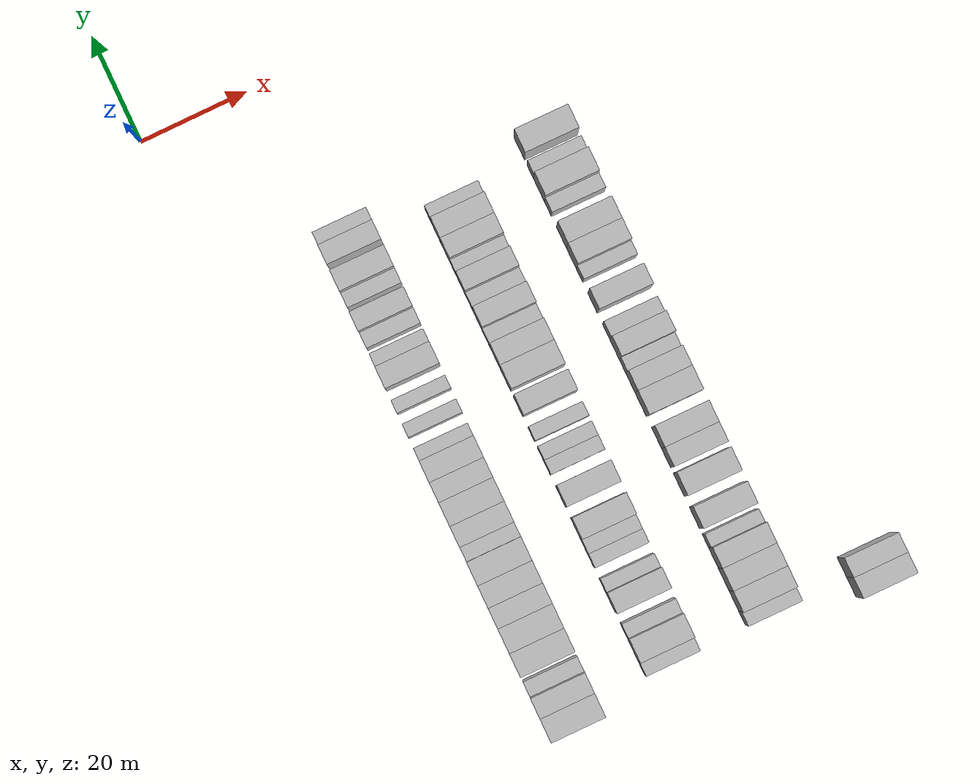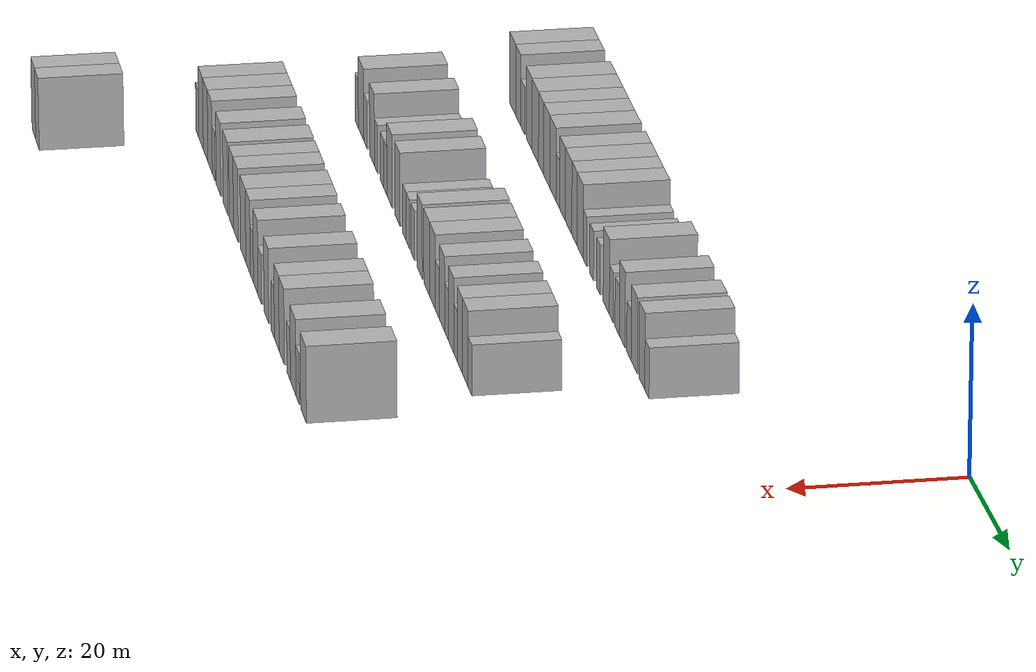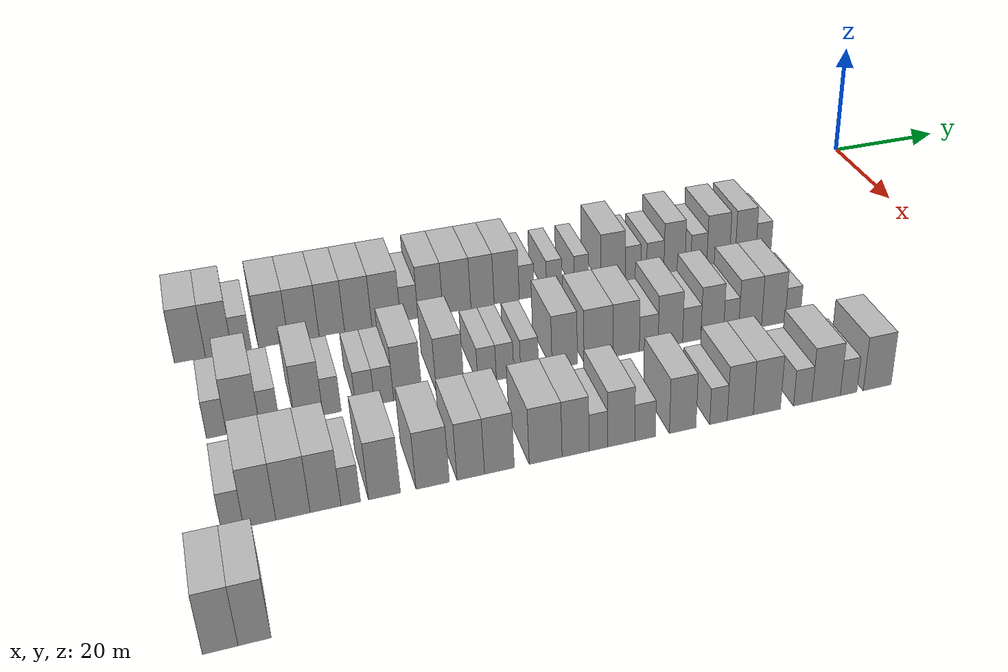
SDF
<sdf version="1.6">
 <world name="default">
  <model name="building_56">
   <static>1</static>
   <pose>25.0000 -119.3465 0 0.000000 0.000000 0.000000</pose>
   <link name="link">
    <pose>0 0 4.50 0 0 0</pose>
    <collision name="collision"><geometry><box><size>10.0000 4.3542 9.0000</size></box></geometry></collision>
    <visual name="visual">
     <cast_shadows>0</cast_shadows>
     <geometry><box><size>10.0000 4.3542 9.0000</size></box></geometry>
     <material>
      <script>
       <uri>model://HANNAS_wall/materials/scripts</uri>
       <uri>model://HANNAS_wall/materials/textures</uri>
       <name>vrc/HANNAS_wall</name>
      </script>
     </material>
    </visual>
   </link>
  </model>
  <model name="building_57">
   <static>1</static>
   <pose>25.0000 -115.2882 0 0.000000 0.000000 0.000000</pose>
   <link name="link">
    <pose>0 0 4.50 0 0 0</pose>
    <collision name="collision"><geometry><box><size>10.0000 3.7624 9.0000</size></box></geometry></collision>
    <visual name="visual">
     <cast_shadows>0</cast_shadows>
     <geometry><box><size>10.0000 3.7624 9.0000</size></box></geometry>
     <material>
      <script>
       <uri>model://HANNAS_wall/materials/scripts</uri>
       <uri>model://HANNAS_wall/materials/textures</uri>
       <name>vrc/HANNAS_wall</name>
      </script>
     </material>
    </visual>
   </link>
  </model>
  <model name="building_58">
   <static>1</static>
   <pose>25.0000 -112.0244 0 0.000000 0.000000 0.000000</pose>
   <link name="link">
    <pose>0 0 3.00 0 0 0</pose>
    <collision name="collision"><geometry><box><size>10.0000 2.7652 6.0000</size></box></geometry></collision>
    <visual name="visual">
     <cast_shadows>0</cast_shadows>
     <geometry><box><size>10.0000 2.7652 6.0000</size></box></geometry>
     <material>
      <script>
       <uri>model://HANNAS_wall/materials/scripts</uri>
       <uri>model://HANNAS_wall/materials/textures</uri>
       <name>vrc/HANNAS_wall</name>
      </script>
     </material>
    </visual>
   </link>
  </model>
  <model name="building_59">
   <static>1</static>
   <pose>25.0000 -107.4683 0 0.000000 0.000000 0.000000</pose>
   <link name="link">
    <pose>0 0 4.50 0 0 0</pose>
    <collision name="collision"><geometry><box><size>10.0000 4.3471 9.0000</size></box></geometry></collision>
    <visual name="visual">
     <cast_shadows>0</cast_shadows>
     <geometry><box><size>10.0000 4.3471 9.0000</size></box></geometry>
     <material>
      <script>
       <uri>model://HANNAS_wall/materials/scripts</uri>
       <uri>model://HANNAS_wall/materials/textures</uri>
       <name>vrc/HANNAS_wall</name>
      </script>
     </material>
    </visual>
   </link>
  </model>
  <model name="building_60">
   <static>1</static>
   <pose>25.0000 -103.0467 0 0.000000 0.000000 0.000000</pose>
   <link name="link">
    <pose>0 0 4.50 0 0 0</pose>
    <collision name="collision"><geometry><box><size>10.0000 4.4961 9.0000</size></box></geometry></collision>
    <visual name="visual">
     <cast_shadows>0</cast_shadows>
     <geometry><box><size>10.0000 4.4961 9.0000</size></box></geometry>
     <material>
      <script>
       <uri>model://HANNAS_wall/materials/scripts</uri>
       <uri>model://HANNAS_wall/materials/textures</uri>
       <name>vrc/HANNAS_wall</name>
      </script>
     </material>
    </visual>
   </link>
  </model>
  <model name="building_61">
   <static>1</static>
   <pose>25.0000 -98.9112 0 0.000000 0.000000 0.000000</pose>
   <link name="link">
    <pose>0 0 4.50 0 0 0</pose>
    <collision name="collision"><geometry><box><size>10.0000 3.7748 9.0000</size></box></geometry></collision>
    <visual name="visual">
     <cast_shadows>0</cast_shadows>
     <geometry><box><size>10.0000 3.7748 9.0000</size></box></geometry>
     <material>
      <script>
       <uri>model://HANNAS_wall/materials/scripts</uri>
       <uri>model://HANNAS_wall/materials/textures</uri>
       <name>vrc/HANNAS_wall</name>
      </script>
     </material>
    </visual>
   </link>
  </model>
  <model name="building_62">
   <static>1</static>
   <pose>25.0000 -94.9779 0 0.000000 0.000000 0.000000</pose>
   <link name="link">
    <pose>0 0 4.50 0 0 0</pose>
    <collision name="collision"><geometry><box><size>10.0000 4.0918 9.0000</size></box></geometry></collision>
    <visual name="visual">
     <cast_shadows>0</cast_shadows>
     <geometry><box><size>10.0000 4.0918 9.0000</size></box></geometry>
     <material>
      <script>
       <uri>model://HANNAS_wall/materials/scripts</uri>
       <uri>model://HANNAS_wall/materials/textures</uri>
       <name>vrc/HANNAS_wall</name>
      </script>
     </material>
    </visual>
   </link>
  </model>
  <model name="building_63">
   <static>1</static>
   <pose>25.0000 -90.7559 0 0.000000 0.000000 0.000000</pose>
   <link name="link">
    <pose>0 0 4.50 0 0 0</pose>
    <collision name="collision"><geometry><box><size>10.0000 4.3522 9.0000</size></box></geometry></collision>
    <visual name="visual">
     <cast_shadows>0</cast_shadows>
     <geometry><box><size>10.0000 4.3522 9.0000</size></box></geometry>
     <material>
      <script>
       <uri>model://HANNAS_wall/materials/scripts</uri>
       <uri>model://HANNAS_wall/materials/textures</uri>
       <name>vrc/HANNAS_wall</name>
      </script>
     </material>
    </visual>
   </link>
  </model>
  <model name="building_64">
   <static>1</static>
   <pose>25.0000 -87.2405 0 0.000000 0.000000 0.000000</pose>
   <link name="link">
    <pose>0 0 3.00 0 0 0</pose>
    <collision name="collision"><geometry><box><size>10.0000 2.6787 6.0000</size></box></geometry></collision>
    <visual name="visual">
     <cast_shadows>0</cast_shadows>
     <geometry><box><size>10.0000 2.6787 6.0000</size></box></geometry>
     <material>
      <script>
       <uri>model://HANNAS_wall/materials/scripts</uri>
       <uri>model://HANNAS_wall/materials/textures</uri>
       <name>vrc/HANNAS_wall</name>
      </script>
     </material>
    </visual>
   </link>
  </model>
  <model name="building_65">
   <static>1</static>
   <pose>25.0000 -83.9820 0 0.000000 0.000000 0.000000</pose>
   <link name="link">
    <pose>0 0 4.50 0 0 0</pose>
    <collision name="collision"><geometry><box><size>10.0000 3.8382 9.0000</size></box></geometry></collision>
    <visual name="visual">
     <cast_shadows>0</cast_shadows>
     <geometry><box><size>10.0000 3.8382 9.0000</size></box></geometry>
     <material>
      <script>
       <uri>model://HANNAS_wall/materials/scripts</uri>
       <uri>model://HANNAS_wall/materials/textures</uri>
       <name>vrc/HANNAS_wall</name>
      </script>
     </material>
    </visual>
   </link>
  </model>
  <model name="building_66">
   <static>1</static>
   <pose>25.0000 -79.8795 0 0.000000 0.000000 0.000000</pose>
   <link name="link">
    <pose>0 0 4.50 0 0 0</pose>
    <collision name="collision"><geometry><box><size>10.0000 4.3669 9.0000</size></box></geometry></collision>
    <visual name="visual">
     <cast_shadows>0</cast_shadows>
     <geometry><box><size>10.0000 4.3669 9.0000</size></box></geometry>
     <material>
      <script>
       <uri>model://HANNAS_wall/materials/scripts</uri>
       <uri>model://HANNAS_wall/materials/textures</uri>
       <name>vrc/HANNAS_wall</name>
      </script>
     </material>
    </visual>
   </link>
  </model>
  <model name="building_67">
   <static>1</static>
   <pose>25.0000 -75.8589 0 0.000000 0.000000 0.000000</pose>
   <link name="link">
    <pose>0 0 4.50 0 0 0</pose>
    <collision name="collision"><geometry><box><size>10.0000 3.6741 9.0000</size></box></geometry></collision>
    <visual name="visual">
     <cast_shadows>0</cast_shadows>
     <geometry><box><size>10.0000 3.6741 9.0000</size></box></geometry>
     <material>
      <script>
       <uri>model://HANNAS_wall/materials/scripts</uri>
       <uri>model://HANNAS_wall/materials/textures</uri>
       <name>vrc/HANNAS_wall</name>
      </script>
     </material>
    </visual>
   </link>
  </model>
  <model name="building_68">
   <static>1</static>
   <pose>25.0000 -72.0245 0 0.000000 0.000000 0.000000</pose>
   <link name="link">
    <pose>0 0 4.50 0 0 0</pose>
    <collision name="collision"><geometry><box><size>10.0000 3.9947 9.0000</size></box></geometry></collision>
    <visual name="visual">
     <cast_shadows>0</cast_shadows>
     <geometry><box><size>10.0000 3.9947 9.0000</size></box></geometry>
     <material>
      <script>
       <uri>model://HANNAS_wall/materials/scripts</uri>
       <uri>model://HANNAS_wall/materials/textures</uri>
       <name>vrc/HANNAS_wall</name>
      </script>
     </material>
    </visual>
   </link>
  </model>
  <model name="building_69">
   <static>1</static>
   <pose>25.0000 -68.8213 0 0.000000 0.000000 0.000000</pose>
   <link name="link">
    <pose>0 0 3.00 0 0 0</pose>
    <collision name="collision"><geometry><box><size>10.0000 2.4117 6.0000</size></box></geometry></collision>
    <visual name="visual">
     <cast_shadows>0</cast_shadows>
     <geometry><box><size>10.0000 2.4117 6.0000</size></box></geometry>
     <material>
      <script>
       <uri>model://HANNAS_wall/materials/scripts</uri>
       <uri>model://HANNAS_wall/materials/textures</uri>
       <name>vrc/HANNAS_wall</name>
      </script>
     </material>
    </visual>
   </link>
  </model>
  <model name="building_70">
   <static>1</static>
   <pose>25.0000 -64.3759 0 0.000000 0.000000 0.000000</pose>
   <link name="link">
    <pose>0 0 3.00 0 0 0</pose>
    <collision name="collision"><geometry><box><size>10.0000 2.4792 6.0000</size></box></geometry></collision>
    <visual name="visual">
     <cast_shadows>0</cast_shadows>
     <geometry><box><size>10.0000 2.4792 6.0000</size></box></geometry>
     <material>
      <script>
       <uri>model://HANNAS_wall/materials/scripts</uri>
       <uri>model://HANNAS_wall/materials/textures</uri>
       <name>vrc/HANNAS_wall</name>
      </script>
     </material>
    </visual>
   </link>
  </model>
  <model name="building_71">
   <static>1</static>
   <pose>25.0000 -59.9315 0 0.000000 0.000000 0.000000</pose>
   <link name="link">
    <pose>0 0 3.00 0 0 0</pose>
    <collision name="collision"><geometry><box><size>10.0000 2.4094 6.0000</size></box></geometry></collision>
    <visual name="visual">
     <cast_shadows>0</cast_shadows>
     <geometry><box><size>10.0000 2.4094 6.0000</size></box></geometry>
     <material>
      <script>
       <uri>model://HANNAS_wall/materials/scripts</uri>
       <uri>model://HANNAS_wall/materials/textures</uri>
       <name>vrc/HANNAS_wall</name>
      </script>
     </material>
    </visual>
   </link>
  </model>
  <model name="building_72">
   <static>1</static>
   <pose>25.0000 -54.6950 0 0.000000 0.000000 0.000000</pose>
   <link name="link">
    <pose>0 0 4.50 0 0 0</pose>
    <collision name="collision"><geometry><box><size>10.0000 4.0636 9.0000</size></box></geometry></collision>
    <visual name="visual">
     <cast_shadows>0</cast_shadows>
     <geometry><box><size>10.0000 4.0636 9.0000</size></box></geometry>
     <material>
      <script>
       <uri>model://HANNAS_wall/materials/scripts</uri>
       <uri>model://HANNAS_wall/materials/textures</uri>
       <name>vrc/HANNAS_wall</name>
      </script>
     </material>
    </visual>
   </link>
  </model>
  <model name="building_73">
   <static>1</static>
   <pose>25.0000 -51.3653 0 0.000000 0.000000 0.000000</pose>
   <link name="link">
    <pose>0 0 3.00 0 0 0</pose>
    <collision name="collision"><geometry><box><size>10.0000 2.5958 6.0000</size></box></geometry></collision>
    <visual name="visual">
     <cast_shadows>0</cast_shadows>
     <geometry><box><size>10.0000 2.5958 6.0000</size></box></geometry>
     <material>
      <script>
       <uri>model://HANNAS_wall/materials/scripts</uri>
       <uri>model://HANNAS_wall/materials/textures</uri>
       <name>vrc/HANNAS_wall</name>
      </script>
     </material>
    </visual>
   </link>
  </model>
  <model name="building_74">
   <static>1</static>
   <pose>25.0000 -47.6034 0 0.000000 0.000000 0.000000</pose>
   <link name="link">
    <pose>0 0 3.00 0 0 0</pose>
    <collision name="collision"><geometry><box><size>10.0000 2.9281 6.0000</size></box></geometry></collision>
    <visual name="visual">
     <cast_shadows>0</cast_shadows>
     <geometry><box><size>10.0000 2.9281 6.0000</size></box></geometry>
     <material>
      <script>
       <uri>model://HANNAS_wall/materials/scripts</uri>
       <uri>model://HANNAS_wall/materials/textures</uri>
       <name>vrc/HANNAS_wall</name>
      </script>
     </material>
    </visual>
   </link>
  </model>
  <model name="building_75">
   <static>1</static>
   <pose>25.0000 -44.3321 0 0.000000 0.000000 0.000000</pose>
   <link name="link">
    <pose>0 0 4.50 0 0 0</pose>
    <collision name="collision"><geometry><box><size>10.0000 3.6144 9.0000</size></box></geometry></collision>
    <visual name="visual">
     <cast_shadows>0</cast_shadows>
     <geometry><box><size>10.0000 3.6144 9.0000</size></box></geometry>
     <material>
      <script>
       <uri>model://HANNAS_wall/materials/scripts</uri>
       <uri>model://HANNAS_wall/materials/textures</uri>
       <name>vrc/HANNAS_wall</name>
      </script>
     </material>
    </visual>
   </link>
  </model>
  <model name="building_76">
   <static>1</static>
   <pose>25.0000 -40.1327 0 0.000000 0.000000 0.000000</pose>
   <link name="link">
    <pose>0 0 3.00 0 0 0</pose>
    <collision name="collision"><geometry><box><size>10.0000 2.7844 6.0000</size></box></geometry></collision>
    <visual name="visual">
     <cast_shadows>0</cast_shadows>
     <geometry><box><size>10.0000 2.7844 6.0000</size></box></geometry>
     <material>
      <script>
       <uri>model://HANNAS_wall/materials/scripts</uri>
       <uri>model://HANNAS_wall/materials/textures</uri>
       <name>vrc/HANNAS_wall</name>
      </script>
     </material>
    </visual>
   </link>
  </model>
  <model name="building_77">
   <static>1</static>
   <pose>25.0000 -36.7621 0 0.000000 0.000000 0.000000</pose>
   <link name="link">
    <pose>0 0 4.50 0 0 0</pose>
    <collision name="collision"><geometry><box><size>10.0000 3.9568 9.0000</size></box></geometry></collision>
    <visual name="visual">
     <cast_shadows>0</cast_shadows>
     <geometry><box><size>10.0000 3.9568 9.0000</size></box></geometry>
     <material>
      <script>
       <uri>model://HANNAS_wall/materials/scripts</uri>
       <uri>model://HANNAS_wall/materials/textures</uri>
       <name>vrc/HANNAS_wall</name>
      </script>
     </material>
    </visual>
   </link>
  </model>
  <model name="building_78">
   <static>1</static>
   <pose>25.0000 -31.9599 0 0.000000 0.000000 0.000000</pose>
   <link name="link">
    <pose>0 0 4.50 0 0 0</pose>
    <collision name="collision"><geometry><box><size>10.0000 3.6475 9.0000</size></box></geometry></collision>
    <visual name="visual">
     <cast_shadows>0</cast_shadows>
     <geometry><box><size>10.0000 3.6475 9.0000</size></box></geometry>
     <material>
      <script>
       <uri>model://HANNAS_wall/materials/scripts</uri>
       <uri>model://HANNAS_wall/materials/textures</uri>
       <name>vrc/HANNAS_wall</name>
      </script>
     </material>
    </visual>
   </link>
  </model>
  <model name="building_79">
   <static>1</static>
   <pose>25.0000 -28.7807 0 0.000000 0.000000 0.000000</pose>
   <link name="link">
    <pose>0 0 3.00 0 0 0</pose>
    <collision name="collision"><geometry><box><size>10.0000 2.7110 6.0000</size></box></geometry></collision>
    <visual name="visual">
     <cast_shadows>0</cast_shadows>
     <geometry><box><size>10.0000 2.7110 6.0000</size></box></geometry>
     <material>
      <script>
       <uri>model://HANNAS_wall/materials/scripts</uri>
       <uri>model://HANNAS_wall/materials/textures</uri>
       <name>vrc/HANNAS_wall</name>
      </script>
     </material>
    </visual>
   </link>
  </model>
  <model name="building_237">
   <static>1</static>
   <pose>44.0000 -117.2515 0 0.000000 0.000000 0.000000</pose>
   <link name="link">
    <pose>0 0 3.00 0 0 0</pose>
    <collision name="collision"><geometry><box><size>10.0000 2.6151 6.0000</size></box></geometry></collision>
    <visual name="visual">
     <cast_shadows>0</cast_shadows>
     <geometry><box><size>10.0000 2.6151 6.0000</size></box></geometry>
     <material>
      <script>
       <uri>model://HANNAS_wall/materials/scripts</uri>
       <uri>model://HANNAS_wall/materials/textures</uri>
       <name>vrc/HANNAS_wall</name>
      </script>
     </material>
    </visual>
   </link>
  </model>
  <model name="building_238">
   <static>1</static>
   <pose>44.0000 -113.7543 0 0.000000 0.000000 0.000000</pose>
   <link name="link">
    <pose>0 0 4.50 0 0 0</pose>
    <collision name="collision"><geometry><box><size>10.0000 4.3792 9.0000</size></box></geometry></collision>
    <visual name="visual">
     <cast_shadows>0</cast_shadows>
     <geometry><box><size>10.0000 4.3792 9.0000</size></box></geometry>
     <material>
      <script>
       <uri>model://HANNAS_wall/materials/scripts</uri>
       <uri>model://HANNAS_wall/materials/textures</uri>
       <name>vrc/HANNAS_wall</name>
      </script>
     </material>
    </visual>
   </link>
  </model>
  <model name="building_239">
   <static>1</static>
   <pose>44.0000 -110.2550 0 0.000000 0.000000 0.000000</pose>
   <link name="link">
    <pose>0 0 3.00 0 0 0</pose>
    <collision name="collision"><geometry><box><size>10.0000 2.6194 6.0000</size></box></geometry></collision>
    <visual name="visual">
     <cast_shadows>0</cast_shadows>
     <geometry><box><size>10.0000 2.6194 6.0000</size></box></geometry>
     <material>
      <script>
       <uri>model://HANNAS_wall/materials/scripts</uri>
       <uri>model://HANNAS_wall/materials/textures</uri>
       <name>vrc/HANNAS_wall</name>
      </script>
     </material>
    </visual>
   </link>
  </model>
  <model name="building_240">
   <static>1</static>
   <pose>44.0000 -105.0268 0 0.000000 0.000000 0.000000</pose>
   <link name="link">
    <pose>0 0 4.50 0 0 0</pose>
    <collision name="collision"><geometry><box><size>10.0000 3.8369 9.0000</size></box></geometry></collision>
    <visual name="visual">
     <cast_shadows>0</cast_shadows>
     <geometry><box><size>10.0000 3.8369 9.0000</size></box></geometry>
     <material>
      <script>
       <uri>model://HANNAS_wall/materials/scripts</uri>
       <uri>model://HANNAS_wall/materials/textures</uri>
       <name>vrc/HANNAS_wall</name>
      </script>
     </material>
    </visual>
   </link>
  </model>
  <model name="building_241">
   <static>1</static>
   <pose>44.0000 -101.8732 0 0.000000 0.000000 0.000000</pose>
   <link name="link">
    <pose>0 0 3.00 0 0 0</pose>
    <collision name="collision"><geometry><box><size>10.0000 2.4703 6.0000</size></box></geometry></collision>
    <visual name="visual">
     <cast_shadows>0</cast_shadows>
     <geometry><box><size>10.0000 2.4703 6.0000</size></box></geometry>
     <material>
      <script>
       <uri>model://HANNAS_wall/materials/scripts</uri>
       <uri>model://HANNAS_wall/materials/textures</uri>
       <name>vrc/HANNAS_wall</name>
      </script>
     </material>
    </visual>
   </link>
  </model>
  <model name="building_242">
   <static>1</static>
   <pose>44.0000 -97.3467 0 0.000000 0.000000 0.000000</pose>
   <link name="link">
    <pose>0 0 3.00 0 0 0</pose>
    <collision name="collision"><geometry><box><size>10.0000 2.5826 6.0000</size></box></geometry></collision>
    <visual name="visual">
     <cast_shadows>0</cast_shadows>
     <geometry><box><size>10.0000 2.5826 6.0000</size></box></geometry>
     <material>
      <script>
       <uri>model://HANNAS_wall/materials/scripts</uri>
       <uri>model://HANNAS_wall/materials/textures</uri>
       <name>vrc/HANNAS_wall</name>
      </script>
     </material>
    </visual>
   </link>
  </model>
  <model name="building_243">
   <static>1</static>
   <pose>44.0000 -94.7155 0 0.000000 0.000000 0.000000</pose>
   <link name="link">
    <pose>0 0 3.00 0 0 0</pose>
    <collision name="collision"><geometry><box><size>10.0000 2.6799 6.0000</size></box></geometry></collision>
    <visual name="visual">
     <cast_shadows>0</cast_shadows>
     <geometry><box><size>10.0000 2.6799 6.0000</size></box></geometry>
     <material>
      <script>
       <uri>model://HANNAS_wall/materials/scripts</uri>
       <uri>model://HANNAS_wall/materials/textures</uri>
       <name>vrc/HANNAS_wall</name>
      </script>
     </material>
    </visual>
   </link>
  </model>
  <model name="building_244">
   <static>1</static>
   <pose>44.0000 -91.3852 0 0.000000 0.000000 0.000000</pose>
   <link name="link">
    <pose>0 0 4.50 0 0 0</pose>
    <collision name="collision"><geometry><box><size>10.0000 3.9808 9.0000</size></box></geometry></collision>
    <visual name="visual">
     <cast_shadows>0</cast_shadows>
     <geometry><box><size>10.0000 3.9808 9.0000</size></box></geometry>
     <material>
      <script>
       <uri>model://HANNAS_wall/materials/scripts</uri>
       <uri>model://HANNAS_wall/materials/textures</uri>
       <name>vrc/HANNAS_wall</name>
      </script>
     </material>
    </visual>
   </link>
  </model>
  <model name="building_245">
   <static>1</static>
   <pose>44.0000 -85.4035 0 0.000000 0.000000 0.000000</pose>
   <link name="link">
    <pose>0 0 4.50 0 0 0</pose>
    <collision name="collision"><geometry><box><size>10.0000 3.9826 9.0000</size></box></geometry></collision>
    <visual name="visual">
     <cast_shadows>0</cast_shadows>
     <geometry><box><size>10.0000 3.9826 9.0000</size></box></geometry>
     <material>
      <script>
       <uri>model://HANNAS_wall/materials/scripts</uri>
       <uri>model://HANNAS_wall/materials/textures</uri>
       <name>vrc/HANNAS_wall</name>
      </script>
     </material>
    </visual>
   </link>
  </model>
  <model name="building_246">
   <static>1</static>
   <pose>44.0000 -80.0729 0 0.000000 0.000000 0.000000</pose>
   <link name="link">
    <pose>0 0 3.00 0 0 0</pose>
    <collision name="collision"><geometry><box><size>10.0000 2.6786 6.0000</size></box></geometry></collision>
    <visual name="visual">
     <cast_shadows>0</cast_shadows>
     <geometry><box><size>10.0000 2.6786 6.0000</size></box></geometry>
     <material>
      <script>
       <uri>model://HANNAS_wall/materials/scripts</uri>
       <uri>model://HANNAS_wall/materials/textures</uri>
       <name>vrc/HANNAS_wall</name>
      </script>
     </material>
    </visual>
   </link>
  </model>
  <model name="building_247">
   <static>1</static>
   <pose>44.0000 -77.4470 0 0.000000 0.000000 0.000000</pose>
   <link name="link">
    <pose>0 0 3.00 0 0 0</pose>
    <collision name="collision"><geometry><box><size>10.0000 2.5732 6.0000</size></box></geometry></collision>
    <visual name="visual">
     <cast_shadows>0</cast_shadows>
     <geometry><box><size>10.0000 2.5732 6.0000</size></box></geometry>
     <material>
      <script>
       <uri>model://HANNAS_wall/materials/scripts</uri>
       <uri>model://HANNAS_wall/materials/textures</uri>
       <name>vrc/HANNAS_wall</name>
      </script>
     </material>
    </visual>
   </link>
  </model>
  <model name="building_248">
   <static>1</static>
   <pose>44.0000 -73.8383 0 0.000000 0.000000 0.000000</pose>
   <link name="link">
    <pose>0 0 3.00 0 0 0</pose>
    <collision name="collision"><geometry><box><size>10.0000 2.6443 6.0000</size></box></geometry></collision>
    <visual name="visual">
     <cast_shadows>0</cast_shadows>
     <geometry><box><size>10.0000 2.6443 6.0000</size></box></geometry>
     <material>
      <script>
       <uri>model://HANNAS_wall/materials/scripts</uri>
       <uri>model://HANNAS_wall/materials/textures</uri>
       <name>vrc/HANNAS_wall</name>
      </script>
     </material>
    </visual>
   </link>
  </model>
  <model name="building_249">
   <static>1</static>
   <pose>44.0000 -68.6126 0 0.000000 0.000000 0.000000</pose>
   <link name="link">
    <pose>0 0 4.50 0 0 0</pose>
    <collision name="collision"><geometry><box><size>10.0000 3.8069 9.0000</size></box></geometry></collision>
    <visual name="visual">
     <cast_shadows>0</cast_shadows>
     <geometry><box><size>10.0000 3.8069 9.0000</size></box></geometry>
     <material>
      <script>
       <uri>model://HANNAS_wall/materials/scripts</uri>
       <uri>model://HANNAS_wall/materials/textures</uri>
       <name>vrc/HANNAS_wall</name>
      </script>
     </material>
    </visual>
   </link>
  </model>
  <model name="building_250">
   <static>1</static>
   <pose>44.0000 -63.4990 0 0.000000 0.000000 0.000000</pose>
   <link name="link">
    <pose>0 0 4.50 0 0 0</pose>
    <collision name="collision"><geometry><box><size>10.0000 4.4204 9.0000</size></box></geometry></collision>
    <visual name="visual">
     <cast_shadows>0</cast_shadows>
     <geometry><box><size>10.0000 4.4204 9.0000</size></box></geometry>
     <material>
      <script>
       <uri>model://HANNAS_wall/materials/scripts</uri>
       <uri>model://HANNAS_wall/materials/textures</uri>
       <name>vrc/HANNAS_wall</name>
      </script>
     </material>
    </visual>
   </link>
  </model>
  <model name="building_251">
   <static>1</static>
   <pose>44.0000 -59.2640 0 0.000000 0.000000 0.000000</pose>
   <link name="link">
    <pose>0 0 4.50 0 0 0</pose>
    <collision name="collision"><geometry><box><size>10.0000 4.0496 9.0000</size></box></geometry></collision>
    <visual name="visual">
     <cast_shadows>0</cast_shadows>
     <geometry><box><size>10.0000 4.0496 9.0000</size></box></geometry>
     <material>
      <script>
       <uri>model://HANNAS_wall/materials/scripts</uri>
       <uri>model://HANNAS_wall/materials/textures</uri>
       <name>vrc/HANNAS_wall</name>
      </script>
     </material>
    </visual>
   </link>
  </model>
  <model name="building_252">
   <static>1</static>
   <pose>44.0000 -55.7771 0 0.000000 0.000000 0.000000</pose>
   <link name="link">
    <pose>0 0 3.00 0 0 0</pose>
    <collision name="collision"><geometry><box><size>10.0000 2.9241 6.0000</size></box></geometry></collision>
    <visual name="visual">
     <cast_shadows>0</cast_shadows>
     <geometry><box><size>10.0000 2.9241 6.0000</size></box></geometry>
     <material>
      <script>
       <uri>model://HANNAS_wall/materials/scripts</uri>
       <uri>model://HANNAS_wall/materials/textures</uri>
       <name>vrc/HANNAS_wall</name>
      </script>
     </material>
    </visual>
   </link>
  </model>
  <model name="building_253">
   <static>1</static>
   <pose>44.0000 -52.3902 0 0.000000 0.000000 0.000000</pose>
   <link name="link">
    <pose>0 0 4.50 0 0 0</pose>
    <collision name="collision"><geometry><box><size>10.0000 3.8498 9.0000</size></box></geometry></collision>
    <visual name="visual">
     <cast_shadows>0</cast_shadows>
     <geometry><box><size>10.0000 3.8498 9.0000</size></box></geometry>
     <material>
      <script>
       <uri>model://HANNAS_wall/materials/scripts</uri>
       <uri>model://HANNAS_wall/materials/textures</uri>
       <name>vrc/HANNAS_wall</name>
      </script>
     </material>
    </visual>
   </link>
  </model>
  <model name="building_254">
   <static>1</static>
   <pose>44.0000 -49.0264 0 0.000000 0.000000 0.000000</pose>
   <link name="link">
    <pose>0 0 3.00 0 0 0</pose>
    <collision name="collision"><geometry><box><size>10.0000 2.8777 6.0000</size></box></geometry></collision>
    <visual name="visual">
     <cast_shadows>0</cast_shadows>
     <geometry><box><size>10.0000 2.8777 6.0000</size></box></geometry>
     <material>
      <script>
       <uri>model://HANNAS_wall/materials/scripts</uri>
       <uri>model://HANNAS_wall/materials/textures</uri>
       <name>vrc/HANNAS_wall</name>
      </script>
     </material>
    </visual>
   </link>
  </model>
  <model name="building_255">
   <static>1</static>
   <pose>44.0000 -45.7698 0 0.000000 0.000000 0.000000</pose>
   <link name="link">
    <pose>0 0 4.50 0 0 0</pose>
    <collision name="collision"><geometry><box><size>10.0000 3.6356 9.0000</size></box></geometry></collision>
    <visual name="visual">
     <cast_shadows>0</cast_shadows>
     <geometry><box><size>10.0000 3.6356 9.0000</size></box></geometry>
     <material>
      <script>
       <uri>model://HANNAS_wall/materials/scripts</uri>
       <uri>model://HANNAS_wall/materials/textures</uri>
       <name>vrc/HANNAS_wall</name>
      </script>
     </material>
    </visual>
   </link>
  </model>
  <model name="building_256">
   <static>1</static>
   <pose>44.0000 -42.7292 0 0.000000 0.000000 0.000000</pose>
   <link name="link">
    <pose>0 0 3.00 0 0 0</pose>
    <collision name="collision"><geometry><box><size>10.0000 2.4457 6.0000</size></box></geometry></collision>
    <visual name="visual">
     <cast_shadows>0</cast_shadows>
     <geometry><box><size>10.0000 2.4457 6.0000</size></box></geometry>
     <material>
      <script>
       <uri>model://HANNAS_wall/materials/scripts</uri>
       <uri>model://HANNAS_wall/materials/textures</uri>
       <name>vrc/HANNAS_wall</name>
      </script>
     </material>
    </visual>
   </link>
  </model>
  <model name="building_257">
   <static>1</static>
   <pose>44.0000 -39.6415 0 0.000000 0.000000 0.000000</pose>
   <link name="link">
    <pose>0 0 4.50 0 0 0</pose>
    <collision name="collision"><geometry><box><size>10.0000 3.7298 9.0000</size></box></geometry></collision>
    <visual name="visual">
     <cast_shadows>0</cast_shadows>
     <geometry><box><size>10.0000 3.7298 9.0000</size></box></geometry>
     <material>
      <script>
       <uri>model://HANNAS_wall/materials/scripts</uri>
       <uri>model://HANNAS_wall/materials/textures</uri>
       <name>vrc/HANNAS_wall</name>
      </script>
     </material>
    </visual>
   </link>
  </model>
  <model name="building_258">
   <static>1</static>
   <pose>44.0000 -35.8293 0 0.000000 0.000000 0.000000</pose>
   <link name="link">
    <pose>0 0 4.50 0 0 0</pose>
    <collision name="collision"><geometry><box><size>10.0000 3.8946 9.0000</size></box></geometry></collision>
    <visual name="visual">
     <cast_shadows>0</cast_shadows>
     <geometry><box><size>10.0000 3.8946 9.0000</size></box></geometry>
     <material>
      <script>
       <uri>model://HANNAS_wall/materials/scripts</uri>
       <uri>model://HANNAS_wall/materials/textures</uri>
       <name>vrc/HANNAS_wall</name>
      </script>
     </material>
    </visual>
   </link>
  </model>
  <model name="building_259">
   <static>1</static>
   <pose>44.0000 -32.6297 0 0.000000 0.000000 0.000000</pose>
   <link name="link">
    <pose>0 0 3.00 0 0 0</pose>
    <collision name="collision"><geometry><box><size>10.0000 2.5044 6.0000</size></box></geometry></collision>
    <visual name="visual">
     <cast_shadows>0</cast_shadows>
     <geometry><box><size>10.0000 2.5044 6.0000</size></box></geometry>
     <material>
      <script>
       <uri>model://HANNAS_wall/materials/scripts</uri>
       <uri>model://HANNAS_wall/materials/textures</uri>
       <name>vrc/HANNAS_wall</name>
      </script>
     </material>
    </visual>
   </link>
  </model>
  <model name="building_412">
   <static>1</static>
   <pose>63.0000 -116.9890 0 0.000000 0.000000 0.000000</pose>
   <link name="link">
    <pose>0 0 3.00 0 0 0</pose>
    <collision name="collision"><geometry><box><size>10.0000 2.6433 6.0000</size></box></geometry></collision>
    <visual name="visual">
     <cast_shadows>0</cast_shadows>
     <geometry><box><size>10.0000 2.6433 6.0000</size></box></geometry>
     <material>
      <script>
       <uri>model://HANNAS_wall/materials/scripts</uri>
       <uri>model://HANNAS_wall/materials/textures</uri>
       <name>vrc/HANNAS_wall</name>
      </script>
     </material>
    </visual>
   </link>
  </model>
  <model name="building_413">
   <static>1</static>
   <pose>63.0000 -113.7252 0 0.000000 0.000000 0.000000</pose>
   <link name="link">
    <pose>0 0 4.50 0 0 0</pose>
    <collision name="collision"><geometry><box><size>10.0000 3.8844 9.0000</size></box></geometry></collision>
    <visual name="visual">
     <cast_shadows>0</cast_shadows>
     <geometry><box><size>10.0000 3.8844 9.0000</size></box></geometry>
     <material>
      <script>
       <uri>model://HANNAS_wall/materials/scripts</uri>
       <uri>model://HANNAS_wall/materials/textures</uri>
       <name>vrc/HANNAS_wall</name>
      </script>
     </material>
    </visual>
   </link>
  </model>
  <model name="building_414">
   <static>1</static>
   <pose>63.0000 -109.6898 0 0.000000 0.000000 0.000000</pose>
   <link name="link">
    <pose>0 0 4.50 0 0 0</pose>
    <collision name="collision"><geometry><box><size>10.0000 4.1863 9.0000</size></box></geometry></collision>
    <visual name="visual">
     <cast_shadows>0</cast_shadows>
     <geometry><box><size>10.0000 4.1863 9.0000</size></box></geometry>
     <material>
      <script>
       <uri>model://HANNAS_wall/materials/scripts</uri>
       <uri>model://HANNAS_wall/materials/textures</uri>
       <name>vrc/HANNAS_wall</name>
      </script>
     </material>
    </visual>
   </link>
  </model>
  <model name="building_415">
   <static>1</static>
   <pose>63.0000 -105.6903 0 0.000000 0.000000 0.000000</pose>
   <link name="link">
    <pose>0 0 4.50 0 0 0</pose>
    <collision name="collision"><geometry><box><size>10.0000 3.8129 9.0000</size></box></geometry></collision>
    <visual name="visual">
     <cast_shadows>0</cast_shadows>
     <geometry><box><size>10.0000 3.8129 9.0000</size></box></geometry>
     <material>
      <script>
       <uri>model://HANNAS_wall/materials/scripts</uri>
       <uri>model://HANNAS_wall/materials/textures</uri>
       <name>vrc/HANNAS_wall</name>
      </script>
     </material>
    </visual>
   </link>
  </model>
  <model name="building_416">
   <static>1</static>
   <pose>63.0000 -102.5619 0 0.000000 0.000000 0.000000</pose>
   <link name="link">
    <pose>0 0 3.00 0 0 0</pose>
    <collision name="collision"><geometry><box><size>10.0000 2.4438 6.0000</size></box></geometry></collision>
    <visual name="visual">
     <cast_shadows>0</cast_shadows>
     <geometry><box><size>10.0000 2.4438 6.0000</size></box></geometry>
     <material>
      <script>
       <uri>model://HANNAS_wall/materials/scripts</uri>
       <uri>model://HANNAS_wall/materials/textures</uri>
       <name>vrc/HANNAS_wall</name>
      </script>
     </material>
    </visual>
   </link>
  </model>
  <model name="building_417">
   <static>1</static>
   <pose>63.0000 -98.3172 0 0.000000 0.000000 0.000000</pose>
   <link name="link">
    <pose>0 0 4.50 0 0 0</pose>
    <collision name="collision"><geometry><box><size>10.0000 4.0457 9.0000</size></box></geometry></collision>
    <visual name="visual">
     <cast_shadows>0</cast_shadows>
     <geometry><box><size>10.0000 4.0457 9.0000</size></box></geometry>
     <material>
      <script>
       <uri>model://HANNAS_wall/materials/scripts</uri>
       <uri>model://HANNAS_wall/materials/textures</uri>
       <name>vrc/HANNAS_wall</name>
      </script>
     </material>
    </visual>
   </link>
  </model>
  <model name="building_418">
   <static>1</static>
   <pose>63.0000 -92.1365 0 0.000000 0.000000 0.000000</pose>
   <link name="link">
    <pose>0 0 4.50 0 0 0</pose>
    <collision name="collision"><geometry><box><size>10.0000 4.3155 9.0000</size></box></geometry></collision>
    <visual name="visual">
     <cast_shadows>0</cast_shadows>
     <geometry><box><size>10.0000 4.3155 9.0000</size></box></geometry>
     <material>
      <script>
       <uri>model://HANNAS_wall/materials/scripts</uri>
       <uri>model://HANNAS_wall/materials/textures</uri>
       <name>vrc/HANNAS_wall</name>
      </script>
     </material>
    </visual>
   </link>
  </model>
  <model name="building_419">
   <static>1</static>
   <pose>63.0000 -87.1653 0 0.000000 0.000000 0.000000</pose>
   <link name="link">
    <pose>0 0 4.50 0 0 0</pose>
    <collision name="collision"><geometry><box><size>10.0000 3.6269 9.0000</size></box></geometry></collision>
    <visual name="visual">
     <cast_shadows>0</cast_shadows>
     <geometry><box><size>10.0000 3.6269 9.0000</size></box></geometry>
     <material>
      <script>
       <uri>model://HANNAS_wall/materials/scripts</uri>
       <uri>model://HANNAS_wall/materials/textures</uri>
       <name>vrc/HANNAS_wall</name>
      </script>
     </material>
    </visual>
   </link>
  </model>
  <model name="building_420">
   <static>1</static>
   <pose>63.0000 -83.3730 0 0.000000 0.000000 0.000000</pose>
   <link name="link">
    <pose>0 0 4.50 0 0 0</pose>
    <collision name="collision"><geometry><box><size>10.0000 3.9577 9.0000</size></box></geometry></collision>
    <visual name="visual">
     <cast_shadows>0</cast_shadows>
     <geometry><box><size>10.0000 3.9577 9.0000</size></box></geometry>
     <material>
      <script>
       <uri>model://HANNAS_wall/materials/scripts</uri>
       <uri>model://HANNAS_wall/materials/textures</uri>
       <name>vrc/HANNAS_wall</name>
      </script>
     </material>
    </visual>
   </link>
  </model>
  <model name="building_421">
   <static>1</static>
   <pose>63.0000 -77.1628 0 0.000000 0.000000 0.000000</pose>
   <link name="link">
    <pose>0 0 4.50 0 0 0</pose>
    <collision name="collision"><geometry><box><size>10.0000 4.4627 9.0000</size></box></geometry></collision>
    <visual name="visual">
     <cast_shadows>0</cast_shadows>
     <geometry><box><size>10.0000 4.4627 9.0000</size></box></geometry>
     <material>
      <script>
       <uri>model://HANNAS_wall/materials/scripts</uri>
       <uri>model://HANNAS_wall/materials/textures</uri>
       <name>vrc/HANNAS_wall</name>
      </script>
     </material>
    </visual>
   </link>
  </model>
  <model name="building_422">
   <static>1</static>
   <pose>63.0000 -73.0749 0 0.000000 0.000000 0.000000</pose>
   <link name="link">
    <pose>0 0 4.50 0 0 0</pose>
    <collision name="collision"><geometry><box><size>10.0000 3.7130 9.0000</size></box></geometry></collision>
    <visual name="visual">
     <cast_shadows>0</cast_shadows>
     <geometry><box><size>10.0000 3.7130 9.0000</size></box></geometry>
     <material>
      <script>
       <uri>model://HANNAS_wall/materials/scripts</uri>
       <uri>model://HANNAS_wall/materials/textures</uri>
       <name>vrc/HANNAS_wall</name>
      </script>
     </material>
    </visual>
   </link>
  </model>
  <model name="building_423">
   <static>1</static>
   <pose>63.0000 -69.9224 0 0.000000 0.000000 0.000000</pose>
   <link name="link">
    <pose>0 0 3.00 0 0 0</pose>
    <collision name="collision"><geometry><box><size>10.0000 2.5919 6.0000</size></box></geometry></collision>
    <visual name="visual">
     <cast_shadows>0</cast_shadows>
     <geometry><box><size>10.0000 2.5919 6.0000</size></box></geometry>
     <material>
      <script>
       <uri>model://HANNAS_wall/materials/scripts</uri>
       <uri>model://HANNAS_wall/materials/textures</uri>
       <name>vrc/HANNAS_wall</name>
      </script>
     </material>
    </visual>
   </link>
  </model>
  <model name="building_424">
   <static>1</static>
   <pose>63.0000 -66.7343 0 0.000000 0.000000 0.000000</pose>
   <link name="link">
    <pose>0 0 4.50 0 0 0</pose>
    <collision name="collision"><geometry><box><size>10.0000 3.7844 9.0000</size></box></geometry></collision>
    <visual name="visual">
     <cast_shadows>0</cast_shadows>
     <geometry><box><size>10.0000 3.7844 9.0000</size></box></geometry>
     <material>
      <script>
       <uri>model://HANNAS_wall/materials/scripts</uri>
       <uri>model://HANNAS_wall/materials/textures</uri>
       <name>vrc/HANNAS_wall</name>
      </script>
     </material>
    </visual>
   </link>
  </model>
  <model name="building_425">
   <static>1</static>
   <pose>63.0000 -63.3742 0 0.000000 0.000000 0.000000</pose>
   <link name="link">
    <pose>0 0 3.00 0 0 0</pose>
    <collision name="collision"><geometry><box><size>10.0000 2.9357 6.0000</size></box></geometry></collision>
    <visual name="visual">
     <cast_shadows>0</cast_shadows>
     <geometry><box><size>10.0000 2.9357 6.0000</size></box></geometry>
     <material>
      <script>
       <uri>model://HANNAS_wall/materials/scripts</uri>
       <uri>model://HANNAS_wall/materials/textures</uri>
       <name>vrc/HANNAS_wall</name>
      </script>
     </material>
    </visual>
   </link>
  </model>
  <model name="building_426">
   <static>1</static>
   <pose>63.0000 -57.9956 0 0.000000 0.000000 0.000000</pose>
   <link name="link">
    <pose>0 0 4.50 0 0 0</pose>
    <collision name="collision"><geometry><box><size>10.0000 3.8215 9.0000</size></box></geometry></collision>
    <visual name="visual">
     <cast_shadows>0</cast_shadows>
     <geometry><box><size>10.0000 3.8215 9.0000</size></box></geometry>
     <material>
      <script>
       <uri>model://HANNAS_wall/materials/scripts</uri>
       <uri>model://HANNAS_wall/materials/textures</uri>
       <name>vrc/HANNAS_wall</name>
      </script>
     </material>
    </visual>
   </link>
  </model>
  <model name="building_427">
   <static>1</static>
   <pose>63.0000 -52.8049 0 0.000000 0.000000 0.000000</pose>
   <link name="link">
    <pose>0 0 3.00 0 0 0</pose>
    <collision name="collision"><geometry><box><size>10.0000 2.5599 6.0000</size></box></geometry></collision>
    <visual name="visual">
     <cast_shadows>0</cast_shadows>
     <geometry><box><size>10.0000 2.5599 6.0000</size></box></geometry>
     <material>
      <script>
       <uri>model://HANNAS_wall/materials/scripts</uri>
       <uri>model://HANNAS_wall/materials/textures</uri>
       <name>vrc/HANNAS_wall</name>
      </script>
     </material>
    </visual>
   </link>
  </model>
  <model name="building_428">
   <static>1</static>
   <pose>63.0000 -49.5975 0 0.000000 0.000000 0.000000</pose>
   <link name="link">
    <pose>0 0 4.50 0 0 0</pose>
    <collision name="collision"><geometry><box><size>10.0000 3.8548 9.0000</size></box></geometry></collision>
    <visual name="visual">
     <cast_shadows>0</cast_shadows>
     <geometry><box><size>10.0000 3.8548 9.0000</size></box></geometry>
     <material>
      <script>
       <uri>model://HANNAS_wall/materials/scripts</uri>
       <uri>model://HANNAS_wall/materials/textures</uri>
       <name>vrc/HANNAS_wall</name>
      </script>
     </material>
    </visual>
   </link>
  </model>
  <model name="building_429">
   <static>1</static>
   <pose>63.0000 -45.6355 0 0.000000 0.000000 0.000000</pose>
   <link name="link">
    <pose>0 0 4.50 0 0 0</pose>
    <collision name="collision"><geometry><box><size>10.0000 4.0693 9.0000</size></box></geometry></collision>
    <visual name="visual">
     <cast_shadows>0</cast_shadows>
     <geometry><box><size>10.0000 4.0693 9.0000</size></box></geometry>
     <material>
      <script>
       <uri>model://HANNAS_wall/materials/scripts</uri>
       <uri>model://HANNAS_wall/materials/textures</uri>
       <name>vrc/HANNAS_wall</name>
      </script>
     </material>
    </visual>
   </link>
  </model>
  <model name="building_430">
   <static>1</static>
   <pose>63.0000 -40.2303 0 0.000000 0.000000 0.000000</pose>
   <link name="link">
    <pose>0 0 3.00 0 0 0</pose>
    <collision name="collision"><geometry><box><size>10.0000 2.7412 6.0000</size></box></geometry></collision>
    <visual name="visual">
     <cast_shadows>0</cast_shadows>
     <geometry><box><size>10.0000 2.7412 6.0000</size></box></geometry>
     <material>
      <script>
       <uri>model://HANNAS_wall/materials/scripts</uri>
       <uri>model://HANNAS_wall/materials/textures</uri>
       <name>vrc/HANNAS_wall</name>
      </script>
     </material>
    </visual>
   </link>
  </model>
  <model name="building_431">
   <static>1</static>
   <pose>63.0000 -36.6545 0 0.000000 0.000000 0.000000</pose>
   <link name="link">
    <pose>0 0 4.50 0 0 0</pose>
    <collision name="collision"><geometry><box><size>10.0000 4.4103 9.0000</size></box></geometry></collision>
    <visual name="visual">
     <cast_shadows>0</cast_shadows>
     <geometry><box><size>10.0000 4.4103 9.0000</size></box></geometry>
     <material>
      <script>
       <uri>model://HANNAS_wall/materials/scripts</uri>
       <uri>model://HANNAS_wall/materials/textures</uri>
       <name>vrc/HANNAS_wall</name>
      </script>
     </material>
    </visual>
   </link>
  </model>
  <model name="building_432">
   <static>1</static>
   <pose>63.0000 -33.1635 0 0.000000 0.000000 0.000000</pose>
   <link name="link">
    <pose>0 0 3.00 0 0 0</pose>
    <collision name="collision"><geometry><box><size>10.0000 2.5718 6.0000</size></box></geometry></collision>
    <visual name="visual">
     <cast_shadows>0</cast_shadows>
     <geometry><box><size>10.0000 2.5718 6.0000</size></box></geometry>
     <material>
      <script>
       <uri>model://HANNAS_wall/materials/scripts</uri>
       <uri>model://HANNAS_wall/materials/textures</uri>
       <name>vrc/HANNAS_wall</name>
      </script>
     </material>
    </visual>
   </link>
  </model>
  <model name="building_433">
   <static>1</static>
   <pose>63.0000 -28.6907 0 0.000000 0.000000 0.000000</pose>
   <link name="link">
    <pose>0 0 4.50 0 0 0</pose>
    <collision name="collision"><geometry><box><size>10.0000 4.3739 9.0000</size></box></geometry></collision>
    <visual name="visual">
     <cast_shadows>0</cast_shadows>
     <geometry><box><size>10.0000 4.3739 9.0000</size></box></geometry>
     <material>
      <script>
       <uri>model://HANNAS_wall/materials/scripts</uri>
       <uri>model://HANNAS_wall/materials/textures</uri>
       <name>vrc/HANNAS_wall</name>
      </script>
     </material>
    </visual>
   </link>
  </model>
  <model name="building_589">
   <static>1</static>
   <pose>82.0000 -120.1487 0 0.000000 0.000000 0.000000</pose>
   <link name="link">
    <pose>0 0 4.50 0 0 0</pose>
    <collision name="collision"><geometry><box><size>10.0000 3.8239 9.0000</size></box></geometry></collision>
    <visual name="visual">
     <cast_shadows>0</cast_shadows>
     <geometry><box><size>10.0000 3.8239 9.0000</size></box></geometry>
     <material>
      <script>
       <uri>model://HANNAS_wall/materials/scripts</uri>
       <uri>model://HANNAS_wall/materials/textures</uri>
       <name>vrc/HANNAS_wall</name>
      </script>
     </material>
    </visual>
   </link>
  </model>
  <model name="building_590">
   <static>1</static>
   <pose>82.0000 -116.4341 0 0.000000 0.000000 0.000000</pose>
   <link name="link">
    <pose>0 0 4.50 0 0 0</pose>
    <collision name="collision"><geometry><box><size>10.0000 3.6053 9.0000</size></box></geometry></collision>
    <visual name="visual">
     <cast_shadows>0</cast_shadows>
     <geometry><box><size>10.0000 3.6053 9.0000</size></box></geometry>
     <material>
      <script>
       <uri>model://HANNAS_wall/materials/scripts</uri>
       <uri>model://HANNAS_wall/materials/textures</uri>
       <name>vrc/HANNAS_wall</name>
      </script>
     </material>
    </visual>
   </link>
  </model>
 </world>
</sdf>
